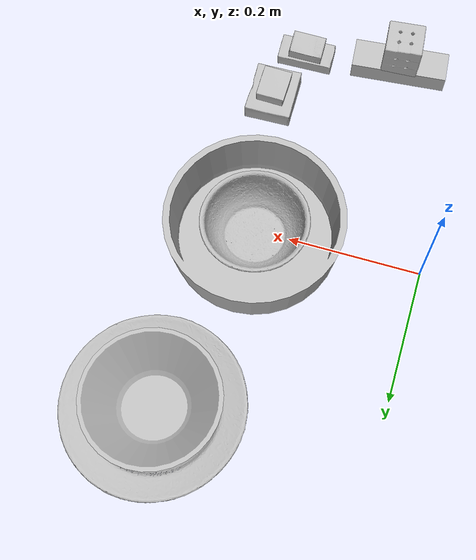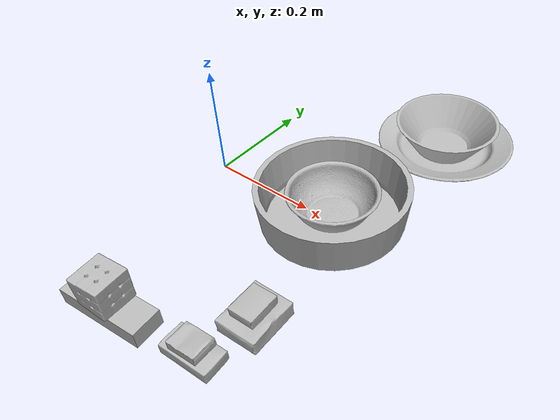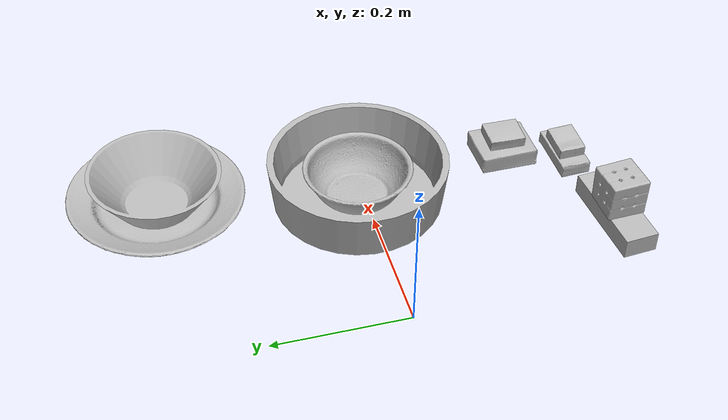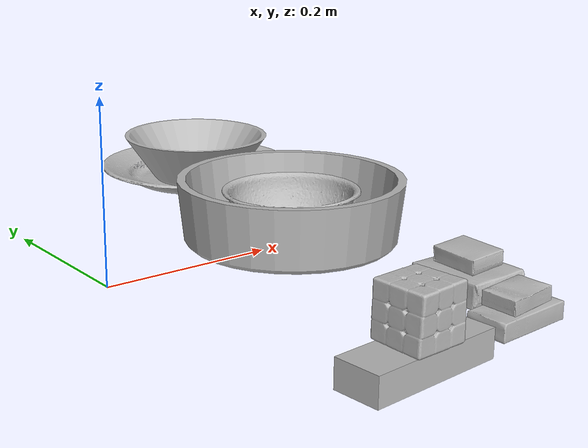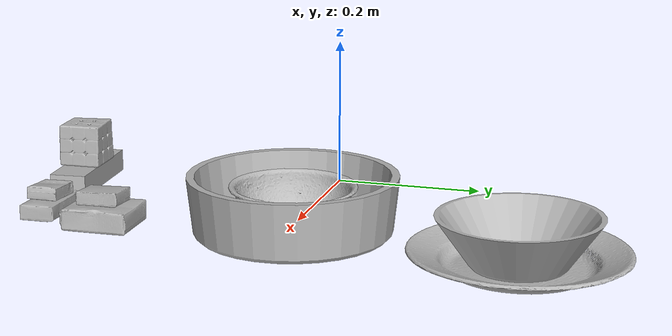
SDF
<?xml version="1.0" ?>
<sdf version="1.4">
  <world name="default">
    <light name="light1" type="point">
      <pose>0 0 1 0 0 0</pose>
      <diffuse>3 3 3 1</diffuse>
      <specular>3 3 3 1</specular>
    </light>
    <light name="light2" type="point">
      <pose>0 0.5 2 0 0 0</pose>
      <diffuse>1 1 1 1</diffuse>
      <specular>1 1 1 1</specular>
    </light>
    <light name="light3" type="point">
      <pose>0 0.5 2 0 0 0</pose>
      <diffuse>3 3 3 1</diffuse>
      <specular>3 3 3 1</specular>
    </light>
    <scene>
      <ambient>0.7 0.7 0.7</ambient>
    </scene>
    <model name="box1">
      <link name="link_box1">
        <collision name="default">
          <geometry>
            <mesh>
              <uri>model://sugar_box/collision_meshes/collision.obj</uri>
              <scale>0.5 0.5 0.5</scale>
            </mesh>
          </geometry>
          <surface>
            <friction>
              <ode>
                <mu>0.5</mu>
                <mu2>0.5</mu2>
              </ode>
            </friction>
          </surface>
        </collision>
        <visual name="default">
          <geometry>
            <mesh>
              <uri>model://sugar_box/visual_meshes/visual.dae</uri>
              <scale>0.5 0.5 0.5</scale>
            </mesh>
          </geometry>
        </visual>
        <inertial>
          <mass>0.05968111753463745</mass>
          <pose>0.0005171863595023751 1.924554817378521e-05 -0.00018182402709499002 -0.00040462627153530444 0.0010506635220302928 0.002615378323275012</pose>
          <inertia>
            <ixx>1.2431535e-05</ixx>
            <iyy>4.0181283e-05</iyy>
            <izz>4.8101785e-05</izz>
            <ixy>0</ixy>
            <ixz>0</ixz>
            <iyz>0</iyz>
          </inertia>
        </inertial>
      </link>
      <pose>0.2595480978488922 -0.3201957046985626 0.011399490758776665 0.000656325872320769 -0.02339184731860241 0.03586041330260048</pose>
    </model>
    <model name="box11">
      <link name="link_box11">
        <collision name="default">
          <geometry>
            <mesh>
              <uri>model://cracker_box/collision_meshes/collision.obj</uri>
              <scale>0.25 0.25 0.25</scale>
            </mesh>
          </geometry>
          <surface>
            <friction>
              <ode>
                <mu>0.5</mu>
                <mu2>0.5</mu2>
              </ode>
            </friction>
          </surface>
        </collision>
        <visual name="default">
          <geometry>
            <mesh>
              <uri>model://cracker_box/visual_meshes/visual.dae</uri>
              <scale>0.25 0.25 0.25</scale>
            </mesh>
          </geometry>
        </visual>
        <inertial>
          <mass>0.04741516709327698</mass>
          <pose>0.0002366035187151283 6.358561950037256e-05 -0.0004257383698131889 -0.00031620780351981393 -0.01110649053153066 0.0025467950031323855</pose>
          <inertia>
            <ixx>7.537689e-06</ixx>
            <iyy>1.2446206e-05</iyy>
            <izz>1.7761875e-05</izz>
            <ixy>0</ixy>
            <ixz>0</ixz>
            <iyz>0</iyz>
          </inertia>
        </inertial>
      </link>
      <pose>0.25929003953933716 -0.3199889659881592 0.03170063719153404 -0.007516203673733639 -0.057509824241805695 0.0354639749773451</pose>
    </model>
    <model name="box2">
      <link name="link_box2">
        <collision name="default">
          <geometry>
            <mesh>
              <uri>model://jenga/collision_meshes/collision.obj</uri>
              <scale>1.0 1.0 1.0</scale>
            </mesh>
          </geometry>
          <surface>
            <friction>
              <ode>
                <mu>0.5</mu>
                <mu2>0.5</mu2>
              </ode>
            </friction>
          </surface>
        </collision>
        <visual name="default">
          <geometry>
            <mesh>
              <uri>model://jenga/visual_meshes/visual.dae</uri>
              <scale>1.0 1.0 1.0</scale>
            </mesh>
          </geometry>
        </visual>
        <inertial>
          <mass>0.17569443583488464</mass>
          <pose>-2.502855807051674e-07 -0.00010250010382151231 -4.0923401684267446e-05 0.0 -7.342153480750062e-07 0.0</pose>
          <inertia>
            <ixx>4.8618913e-05</ixx>
            <iyy>0.00032944046</iyy>
            <izz>0.0003517057</izz>
            <ixy>0</ixy>
            <ixz>0</ixz>
            <iyz>0</iyz>
          </inertia>
        </inertial>
      </link>
      <pose>0.10999181121587753 -0.3398984968662262 0.015000145882368088 1.9178632407357264e-06 2.666486756454315e-06 0.0842836247733489</pose>
    </model>
    <model name="box21">
      <link name="link_box21">
        <collision name="default">
          <geometry>
            <mesh>
              <uri>model://rubiks_cube/collision_meshes/collision.obj</uri>
              <scale>1.0 1.0 1.0</scale>
            </mesh>
          </geometry>
          <surface>
            <friction>
              <ode>
                <mu>0.5</mu>
                <mu2>0.5</mu2>
              </ode>
            </friction>
          </surface>
        </collision>
        <visual name="default">
          <geometry>
            <mesh>
              <uri>model://rubiks_cube/visual_meshes/visual.dae</uri>
              <scale>1.0 1.0 1.0</scale>
            </mesh>
          </geometry>
        </visual>
        <inertial>
          <mass>0.16427944600582123</mass>
          <pose>2.6721041649580002e-05 5.2569666877388954e-05 -7.2643156272533815e-06 -0.05467299197426534 -0.0981400693449792 -0.034455479534688374</pose>
          <inertia>
            <ixx>9.0775415e-05</ixx>
            <iyy>9.0352085e-05</iyy>
            <izz>9.152764e-05</izz>
            <ixy>0</ixy>
            <ixz>0</ixz>
            <iyz>0</iyz>
          </inertia>
        </inertial>
      </link>
      <pose>0.10995139181613922 -0.34023717045783997 0.05867912620306015 6.319665407385059e-05 4.745031978003187e-06 0.08428378935360334</pose>
    </model>
    <model name="box3">
      <link name="link_box3">
        <collision name="default">
          <geometry>
            <mesh>
              <uri>model://gelatin_box/collision_meshes/collision.obj</uri>
              <scale>1.0 1.0 1.0</scale>
            </mesh>
          </geometry>
          <surface>
            <friction>
              <ode>
                <mu>0.5</mu>
                <mu2>0.5</mu2>
              </ode>
            </friction>
          </surface>
        </collision>
        <visual name="default">
          <geometry>
            <mesh>
              <uri>model://gelatin_box/visual_meshes/visual.dae</uri>
              <scale>1.0 1.0 1.0</scale>
            </mesh>
          </geometry>
        </visual>
        <inertial>
          <mass>0.21197354793548584</mass>
          <pose>0.0004319618456065655 0.00011156872642459348 -0.0003640321083366871 -0.0010503719594585892 -0.004755818227500045 0.016440553882781303</pose>
          <inertia>
            <ixx>0.00014963602</ixx>
            <iyy>0.00010688423</iyy>
            <izz>0.00022777937</izz>
            <ixy>0</ixy>
            <ixz>0</ixz>
            <iyz>0</iyz>
          </inertia>
        </inertial>
      </link>
      <pose>0.2899567186832428 -0.23006974160671234 0.015168318524956703 0.005597458018188513 -0.007304527777183944 0.015657722590139155</pose>
    </model>
    <model name="box31">
      <link name="link_box31">
        <collision name="default">
          <geometry>
            <mesh>
              <uri>model://pudding_box/collision_meshes/collision.obj</uri>
              <scale>0.5 0.5 0.5</scale>
            </mesh>
          </geometry>
          <surface>
            <friction>
              <ode>
                <mu>0.5</mu>
                <mu2>0.5</mu2>
              </ode>
            </friction>
          </surface>
        </collision>
        <visual name="default">
          <geometry>
            <mesh>
              <uri>model://pudding_box/visual_meshes/visual.dae</uri>
              <scale>0.5 0.5 0.5</scale>
            </mesh>
          </geometry>
        </visual>
        <inertial>
          <mass>0.056796859949827194</mass>
          <pose>0.00024474109522998333 0.0004033942532259971 -0.0002594413817860186 0.005213102251005844 -0.00660379641961884 0.02007983447872704</pose>
          <inertia>
            <ixx>1.605148e-05</ixx>
            <iyy>1.0799551e-05</iyy>
            <izz>2.3704206e-05</izz>
            <ixy>0</ixy>
            <ixz>0</ixz>
            <iyz>0</iyz>
          </inertia>
        </inertial>
      </link>
      <pose>0.28934693336486816 -0.22984567284584045 0.03960404545068741 0.012529376636880626 -0.04450910280006628 0.006369992420365001</pose>
    </model>
    <model name="plate1">
      <link name="link_plate1">
        <collision name="default">
          <geometry>
            <mesh>
              <uri>model://pan_tefal/collision_meshes/collision.obj</uri>
              <scale>1.0 1.0 1.0</scale>
            </mesh>
          </geometry>
          <surface>
            <friction>
              <ode>
                <mu>0.5</mu>
                <mu2>0.5</mu2>
              </ode>
            </friction>
          </surface>
        </collision>
        <visual name="default">
          <geometry>
            <mesh>
              <uri>model://pan_tefal/visual_meshes/visual.dae</uri>
              <scale>1.0 1.0 1.0</scale>
            </mesh>
          </geometry>
        </visual>
        <inertial>
          <mass>1.4752264022827148</mass>
          <pose>-0.0001800210156943649 3.278951771790162e-05 -0.008514936082065105 0.0008190241607511121 -0.0003301478392365544 -0.33184922825406304</pose>
          <inertia>
            <ixx>0.010183416</ixx>
            <iyy>0.01024907</iyy>
            <izz>0.018745707</izz>
            <ixy>0</ixy>
            <ixz>0</ixz>
            <iyz>0</iyz>
          </inertia>
        </inertial>
      </link>
      <pose>0.24999995529651642 0.0100000174716115 0.038050003349781036 3.333368260281847e-09 -4.460640164783309e-09 -0.071275876970938</pose>
    </model>
    <model name="bowl1">
      <link name="link_bowl1">
        <collision name="default">
          <geometry>
            <mesh>
              <uri>model://bowl/collision_meshes/collision.obj</uri>
              <scale>1.0 1.0 1.0</scale>
            </mesh>
          </geometry>
          <surface>
            <friction>
              <ode>
                <mu>0.5</mu>
                <mu2>0.5</mu2>
              </ode>
            </friction>
          </surface>
        </collision>
        <visual name="default">
          <geometry>
            <mesh>
              <uri>model://bowl/visual_meshes/visual.dae</uri>
              <scale>1.0 1.0 1.0</scale>
            </mesh>
          </geometry>
        </visual>
        <inertial>
          <mass>0.13335108757019043</mass>
          <pose>0.00020445126574486494 -0.0010302079608663917 -0.0008042646804824471 -0.01576397865263616 0.014546905041115984 0.7140477796865206</pose>
          <inertia>
            <ixx>0.000306318</ixx>
            <iyy>0.00029947367</iyy>
            <izz>0.00051533245</izz>
            <ixy>0</ixy>
            <ixz>0</ixz>
            <iyz>0</iyz>
          </inertia>
        </inertial>
      </link>
      <pose>0.24997752904891968 0.010044467635452747 0.03551606833934784 -0.0015919183546871903 -0.0008868201655026454 -0.03760028123253299</pose>
    </model>
    <model name="plate2">
      <link name="link_plate2">
        <collision name="default">
          <geometry>
            <mesh>
              <uri>model://plate/collision_meshes/collision.obj</uri>
              <scale>1.0 1.0 1.0</scale>
            </mesh>
          </geometry>
          <surface>
            <friction>
              <ode>
                <mu>0.5</mu>
                <mu2>0.5</mu2>
              </ode>
            </friction>
          </surface>
        </collision>
        <visual name="default">
          <geometry>
            <mesh>
              <uri>model://plate/visual_meshes/visual.dae</uri>
              <scale>1.0 1.0 1.0</scale>
            </mesh>
          </geometry>
        </visual>
        <inertial>
          <mass>0.1753290891647339</mass>
          <pose>-0.0006044620531611145 0.0002782598021440208 -0.0010561987292021513 0.0022188066246853514 -0.003225466953145419 0.45260347799947726</pose>
          <inertia>
            <ixx>0.00082019315</ixx>
            <iyy>0.00081234827</iyy>
            <izz>0.0016041752</izz>
            <ixy>0</ixy>
            <ixz>0</ixz>
            <iyz>0</iyz>
          </inertia>
        </inertial>
      </link>
      <pose>0.309999942779541 0.30000007152557373 0.013733375817537308 -1.384365436237545e-06 -5.242262362208142e-06 -0.044186489621352194</pose>
    </model>
    <model name="bowl2">
      <link name="link_bowl2">
        <collision name="default">
          <geometry>
            <mesh>
              <uri>model://bowl_a/collision_meshes/collision.obj</uri>
              <scale>1.0 1.0 1.0</scale>
            </mesh>
          </geometry>
          <surface>
            <friction>
              <ode>
                <mu>0.5</mu>
                <mu2>0.5</mu2>
              </ode>
            </friction>
          </surface>
        </collision>
        <visual name="default">
          <geometry>
            <mesh>
              <uri>model://bowl_a/visual_meshes/visual.dae</uri>
              <scale>1.0 1.0 1.0</scale>
            </mesh>
          </geometry>
        </visual>
        <inertial>
          <mass>0.4813200831413269</mass>
          <pose>0.0002786751138046384 4.731064836960286e-05 -0.0013765294570475817 -0.0009805320964546374 -0.0010938264681851768 -0.19124047933057892</pose>
          <inertia>
            <ixx>0.0013703406</ixx>
            <iyy>0.0013787533</iyy>
            <izz>0.0024372027</izz>
            <ixy>0</ixy>
            <ixz>0</ixz>
            <iyz>0</iyz>
          </inertia>
        </inertial>
      </link>
      <pose>0.3099399209022522 0.2996162474155426 0.03478797525167465 0.012465057552418115 -0.0031560131492254432 0.10013673499696427</pose>
    </model>
  </world>
</sdf>
